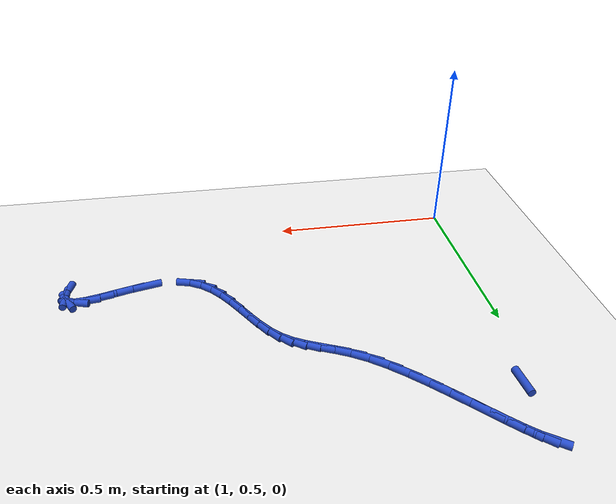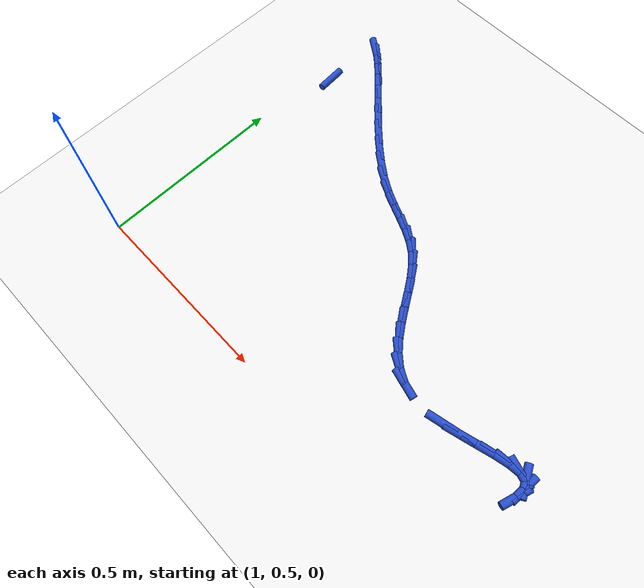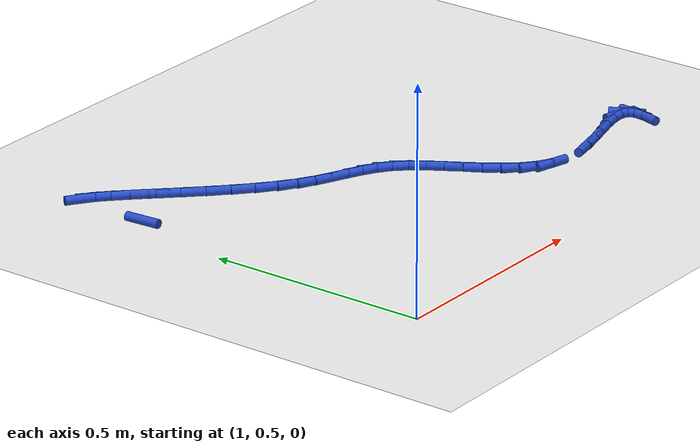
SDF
<sdf version="1.6">
 <world name="default">
  <model name="ground_plane">
   <static>1</static>
   <link name="link">
    <collision name="collision">
     <geometry><plane><normal>0 0 1</normal><size>100 100</size></plane></geometry>
     <surface><friction><ode><mu>100</mu><mu2>50</mu2></ode></friction></surface>
    </collision>
    <visual name="visual">
     <cast_shadows>0</cast_shadows>
     <geometry><plane><normal>0 0 1</normal><size>100 100</size></plane></geometry>
     <material>
      <script><uri>file://media/materials/scripts/gazebo.material</uri><name>Gazebo/WhiteGlow</name></script>
     </material>
    </visual>
   </link>
  </model>
  <model name="line">
   <link name="link_47">
    <pose>1.0438481756337614 1.232311479643305 0.01 0 1.57 -1.502000540450538</pose>
    <collision name="collision">
     <geometry><cylinder><radius>0.01</radius><length>0.08</length></cylinder></geometry>
    </collision>
    <visual name="visual">
     <material>
      <script><name>Gazebo/Blue</name><uri>file://media/materials/scripts/gazebo.material</uri></script>
     </material>
     <geometry><cylinder><radius>0.01</radius><length>0.08</length></cylinder></geometry>
    </visual>
   </link>
   <link name="link_54">
    <pose>1.0576668361381854 1.4027648305423797 0.01 0 1.57 -0.613841902767912</pose>
    <collision name="collision">
     <geometry><cylinder><radius>0.01</radius><length>0.08</length></cylinder></geometry>
    </collision>
    <visual name="visual">
     <material>
      <script><name>Gazebo/Blue</name><uri>file://media/materials/scripts/gazebo.material</uri></script>
     </material>
     <geometry><cylinder><radius>0.01</radius><length>0.08</length></cylinder></geometry>
    </visual>
   </link>
   <link name="link_55">
    <pose>1.0777483266673082 1.3886143497642618 0.01 0 1.57 -0.728491891102244</pose>
    <collision name="collision">
     <geometry><cylinder><radius>0.01</radius><length>0.08</length></cylinder></geometry>
    </collision>
    <visual name="visual">
     <material>
      <script><name>Gazebo/Blue</name><uri>file://media/materials/scripts/gazebo.material</uri></script>
     </material>
     <geometry><cylinder><radius>0.01</radius><length>0.08</length></cylinder></geometry>
    </visual>
   </link>
   <link name="link_56">
    <pose>1.1022071522153511 1.366792056748008 0.01 0 1.57 -0.7803951883285504</pose>
    <collision name="collision">
     <geometry><cylinder><radius>0.01</radius><length>0.08</length></cylinder></geometry>
    </collision>
    <visual name="visual">
     <material>
      <script><name>Gazebo/Blue</name><uri>file://media/materials/scripts/gazebo.material</uri></script>
     </material>
     <geometry><cylinder><radius>0.01</radius><length>0.08</length></cylinder></geometry>
    </visual>
   </link>
   <link name="link_57">
    <pose>1.1304509060775019 1.338829503982765 0.01 0 1.57 -0.8031283511208743</pose>
    <collision name="collision">
     <geometry><cylinder><radius>0.01</radius><length>0.08</length></cylinder></geometry>
    </collision>
    <visual name="visual">
     <material>
      <script><name>Gazebo/Blue</name><uri>file://media/materials/scripts/gazebo.material</uri></script>
     </material>
     <geometry><cylinder><radius>0.01</radius><length>0.08</length></cylinder></geometry>
    </visual>
   </link>
   <link name="link_58">
    <pose>1.1618871815489493 1.306258243957677 0.01 0 1.57 -0.8085271217908689</pose>
    <collision name="collision">
     <geometry><cylinder><radius>0.01</radius><length>0.08</length></cylinder></geometry>
    </collision>
    <visual name="visual">
     <material>
      <script><name>Gazebo/Blue</name><uri>file://media/materials/scripts/gazebo.material</uri></script>
     </material>
     <geometry><cylinder><radius>0.01</radius><length>0.08</length></cylinder></geometry>
    </visual>
   </link>
   <link name="link_59">
    <pose>1.1959235719248824 1.2706098291618904 0.01 0 1.57 -0.801097966855747</pose>
    <collision name="collision">
     <geometry><cylinder><radius>0.01</radius><length>0.08</length></cylinder></geometry>
    </collision>
    <visual name="visual">
     <material>
      <script><name>Gazebo/Blue</name><uri>file://media/materials/scripts/gazebo.material</uri></script>
     </material>
     <geometry><cylinder><radius>0.01</radius><length>0.08</length></cylinder></geometry>
    </visual>
   </link>
   <link name="link_60">
    <pose>1.2319676705004912 1.23341581208455 0.01 0 1.57 -0.782032142534381</pose>
    <collision name="collision">
     <geometry><cylinder><radius>0.01</radius><length>0.08</length></cylinder></geometry>
    </collision>
    <visual name="visual">
     <material>
      <script><name>Gazebo/Blue</name><uri>file://media/materials/scripts/gazebo.material</uri></script>
     </material>
     <geometry><cylinder><radius>0.01</radius><length>0.08</length></cylinder></geometry>
    </visual>
   </link>
   <link name="link_61">
    <pose>1.2694270705709623 1.1962077452148026 0.01 0 1.57 -0.750376251048214</pose>
    <collision name="collision">
     <geometry><cylinder><radius>0.01</radius><length>0.08</length></cylinder></geometry>
    </collision>
    <visual name="visual">
     <material>
      <script><name>Gazebo/Blue</name><uri>file://media/materials/scripts/gazebo.material</uri></script>
     </material>
     <geometry><cylinder><radius>0.01</radius><length>0.08</length></cylinder></geometry>
    </visual>
   </link>
   <link name="link_62">
    <pose>1.3077093654314864 1.1605171810417936 0.01 0 1.57 -0.7030699892687395</pose>
    <collision name="collision">
     <geometry><cylinder><radius>0.01</radius><length>0.08</length></cylinder></geometry>
    </collision>
    <visual name="visual">
     <material>
      <script><name>Gazebo/Blue</name><uri>file://media/materials/scripts/gazebo.material</uri></script>
     </material>
     <geometry><cylinder><radius>0.01</radius><length>0.08</length></cylinder></geometry>
    </visual>
   </link>
   <link name="link_63">
    <pose>1.346222148377252 1.1278756720546679 0.01 0 1.57 -0.6341723387397363</pose>
    <collision name="collision">
     <geometry><cylinder><radius>0.01</radius><length>0.08</length></cylinder></geometry>
    </collision>
    <visual name="visual">
     <material>
      <script><name>Gazebo/Blue</name><uri>file://media/materials/scripts/gazebo.material</uri></script>
     </material>
     <geometry><cylinder><radius>0.01</radius><length>0.08</length></cylinder></geometry>
    </visual>
   </link>
   <link name="link_64">
    <pose>1.3843730127034477 1.0998147707425723 0.01 0 1.57 -0.5386966603337799</pose>
    <collision name="collision">
     <geometry><cylinder><radius>0.01</radius><length>0.08</length></cylinder></geometry>
    </collision>
    <visual name="visual">
     <material>
      <script><name>Gazebo/Blue</name><uri>file://media/materials/scripts/gazebo.material</uri></script>
     </material>
     <geometry><cylinder><radius>0.01</radius><length>0.08</length></cylinder></geometry>
    </visual>
   </link>
   <link name="link_65">
    <pose>1.421590855276233 1.0775711789595939 0.01 0 1.57 -0.45377471875242775</pose>
    <collision name="collision">
     <geometry><cylinder><radius>0.01</radius><length>0.08</length></cylinder></geometry>
    </collision>
    <visual name="visual">
     <material>
      <script><name>Gazebo/Blue</name><uri>file://media/materials/scripts/gazebo.material</uri></script>
     </material>
     <geometry><cylinder><radius>0.01</radius><length>0.08</length></cylinder></geometry>
    </visual>
   </link>
   <link name="link_66">
    <pose>1.4574714815310066 1.060071511781243 0.01 0 1.57 -0.4111279789276704</pose>
    <collision name="collision">
     <geometry><cylinder><radius>0.01</radius><length>0.08</length></cylinder></geometry>
    </collision>
    <visual name="visual">
     <material>
      <script><name>Gazebo/Blue</name><uri>file://media/materials/scripts/gazebo.material</uri></script>
     </material>
     <geometry><cylinder><radius>0.01</radius><length>0.08</length></cylinder></geometry>
    </visual>
   </link>
   <link name="link_67">
    <pose>1.4916893756426919 1.045153436503021 0.01 0 1.57 -0.42289680968629967</pose>
    <collision name="collision">
     <geometry><cylinder><radius>0.01</radius><length>0.08</length></cylinder></geometry>
    </collision>
    <visual name="visual">
     <material>
      <script><name>Gazebo/Blue</name><uri>file://media/materials/scripts/gazebo.material</uri></script>
     </material>
     <geometry><cylinder><radius>0.01</radius><length>0.08</length></cylinder></geometry>
    </visual>
   </link>
   <link name="link_68">
    <pose>1.523919483813063 1.0306482257690492 0.01 0 1.57 -0.4978659021485133</pose>
    <collision name="collision">
     <geometry><cylinder><radius>0.01</radius><length>0.08</length></cylinder></geometry>
    </collision>
    <visual name="visual">
     <material>
      <script><name>Gazebo/Blue</name><uri>file://media/materials/scripts/gazebo.material</uri></script>
     </material>
     <geometry><cylinder><radius>0.01</radius><length>0.08</length></cylinder></geometry>
    </visual>
   </link>
   <link name="link_69">
    <pose>1.5538367522438925 1.014387152223447 0.01 0 1.57 -0.6370447020658595</pose>
    <collision name="collision">
     <geometry><cylinder><radius>0.01</radius><length>0.08</length></cylinder></geometry>
    </collision>
    <visual name="visual">
     <material>
      <script><name>Gazebo/Blue</name><uri>file://media/materials/scripts/gazebo.material</uri></script>
     </material>
     <geometry><cylinder><radius>0.01</radius><length>0.08</length></cylinder></geometry>
    </visual>
   </link>
   <link name="link_70">
    <pose>1.581116129215657 0.9942014951621901 0.01 0 1.57 -0.8071825467529306</pose>
    <collision name="collision">
     <geometry><cylinder><radius>0.01</radius><length>0.08</length></cylinder></geometry>
    </collision>
    <visual name="visual">
     <material>
      <script><name>Gazebo/Blue</name><uri>file://media/materials/scripts/gazebo.material</uri></script>
     </material>
     <geometry><cylinder><radius>0.01</radius><length>0.08</length></cylinder></geometry>
    </visual>
   </link>
   <link name="link_71">
    <pose>1.6056397282249038 0.9685854623789829 0.01 0 1.57 -0.9300030060966878</pose>
    <collision name="collision">
     <geometry><cylinder><radius>0.01</radius><length>0.08</length></cylinder></geometry>
    </collision>
    <visual name="visual">
     <material>
      <script><name>Gazebo/Blue</name><uri>file://media/materials/scripts/gazebo.material</uri></script>
     </material>
     <geometry><cylinder><radius>0.01</radius><length>0.08</length></cylinder></geometry>
    </visual>
   </link>
   <link name="link_72">
    <pose>1.6280653245290417 0.9385153785771043 0.01 0 1.57 -1.000021395005159</pose>
    <collision name="collision">
     <geometry><cylinder><radius>0.01</radius><length>0.08</length></cylinder></geometry>
    </collision>
    <visual name="visual">
     <material>
      <script><name>Gazebo/Blue</name><uri>file://media/materials/scripts/gazebo.material</uri></script>
     </material>
     <geometry><cylinder><radius>0.01</radius><length>0.08</length></cylinder></geometry>
    </visual>
   </link>
   <link name="link_73">
    <pose>1.6492321963015202 0.9055483776214603 0.01 0 1.57 -1.026883010544404</pose>
    <collision name="collision">
     <geometry><cylinder><radius>0.01</radius><length>0.08</length></cylinder></geometry>
    </collision>
    <visual name="visual">
     <material>
      <script><name>Gazebo/Blue</name><uri>file://media/materials/scripts/gazebo.material</uri></script>
     </material>
     <geometry><cylinder><radius>0.01</radius><length>0.08</length></cylinder></geometry>
    </visual>
   </link>
   <link name="link_74">
    <pose>1.6699796217157856 0.8712415933769566 0.01 0 1.57 -1.0151268811893586</pose>
    <collision name="collision">
     <geometry><cylinder><radius>0.01</radius><length>0.08</length></cylinder></geometry>
    </collision>
    <visual name="visual">
     <material>
      <script><name>Gazebo/Blue</name><uri>file://media/materials/scripts/gazebo.material</uri></script>
     </material>
     <geometry><cylinder><radius>0.01</radius><length>0.08</length></cylinder></geometry>
    </visual>
   </link>
   <link name="link_75">
    <pose>1.691146878945286 0.8371521597084984 0.01 0 1.57 -0.9641129038287042</pose>
    <collision name="collision">
     <geometry><cylinder><radius>0.01</radius><length>0.08</length></cylinder></geometry>
    </collision>
    <visual name="visual">
     <material>
      <script><name>Gazebo/Blue</name><uri>file://media/materials/scripts/gazebo.material</uri></script>
     </material>
     <geometry><cylinder><radius>0.01</radius><length>0.08</length></cylinder></geometry>
    </visual>
   </link>
   <link name="link_76">
    <pose>1.7135732461634703 0.8048372104809913 0.01 0 1.57 -0.8685313839008822</pose>
    <collision name="collision">
     <geometry><cylinder><radius>0.01</radius><length>0.08</length></cylinder></geometry>
    </collision>
    <visual name="visual">
     <material>
      <script><name>Gazebo/Blue</name><uri>file://media/materials/scripts/gazebo.material</uri></script>
     </material>
     <geometry><cylinder><radius>0.01</radius><length>0.08</length></cylinder></geometry>
    </visual>
   </link>
   <link name="link_77">
    <pose>1.7380980015437844 0.775853879559341 0.01 0 1.57 -0.7201681286227198</pose>
    <collision name="collision">
     <geometry><cylinder><radius>0.01</radius><length>0.08</length></cylinder></geometry>
    </collision>
    <visual name="visual">
     <material>
      <script><name>Gazebo/Blue</name><uri>file://media/materials/scripts/gazebo.material</uri></script>
     </material>
     <geometry><cylinder><radius>0.01</radius><length>0.08</length></cylinder></geometry>
    </visual>
   </link>
   <link name="link_78">
    <pose>1.7655604232596773 0.751759300808453 0.01 0 1.57 -0.5142489492076203</pose>
    <collision name="collision">
     <geometry><cylinder><radius>0.01</radius><length>0.08</length></cylinder></geometry>
    </collision>
    <visual name="visual">
     <material>
      <script><name>Gazebo/Blue</name><uri>file://media/materials/scripts/gazebo.material</uri></script>
     </material>
     <geometry><cylinder><radius>0.01</radius><length>0.08</length></cylinder></geometry>
    </visual>
   </link>
   <link name="link_79">
    <pose>1.7967997894845977 0.7341106080932328 0.01 0 1.57 -0.26281188434732417</pose>
    <collision name="collision">
     <geometry><cylinder><radius>0.01</radius><length>0.08</length></cylinder></geometry>
    </collision>
    <visual name="visual">
     <material>
      <script><name>Gazebo/Blue</name><uri>file://media/materials/scripts/gazebo.material</uri></script>
     </material>
     <geometry><cylinder><radius>0.01</radius><length>0.08</length></cylinder></geometry>
    </visual>
   </link>
   <link name="link_82">
    <pose>1.9171042262596691 0.7292373899931744 0.01 0 1.57 0.2193369366691486</pose>
    <collision name="collision">
     <geometry><cylinder><radius>0.01</radius><length>0.08</length></cylinder></geometry>
    </collision>
    <visual name="visual">
     <material>
      <script><name>Gazebo/Blue</name><uri>file://media/materials/scripts/gazebo.material</uri></script>
     </material>
     <geometry><cylinder><radius>0.01</radius><length>0.08</length></cylinder></geometry>
    </visual>
   </link>
   <link name="link_83">
    <pose>1.961917367703103 0.7392272835639213 0.01 0 1.57 0.26277826136028576</pose>
    <collision name="collision">
     <geometry><cylinder><radius>0.01</radius><length>0.08</length></cylinder></geometry>
    </collision>
    <visual name="visual">
     <material>
      <script><name>Gazebo/Blue</name><uri>file://media/materials/scripts/gazebo.material</uri></script>
     </material>
     <geometry><cylinder><radius>0.01</radius><length>0.08</length></cylinder></geometry>
    </visual>
   </link>
   <link name="link_84">
    <pose>2.005697345725211 0.7510040373029271 0.01 0 1.57 0.2664387800928989</pose>
    <collision name="collision">
     <geometry><cylinder><radius>0.01</radius><length>0.08</length></cylinder></geometry>
    </collision>
    <visual name="visual">
     <material>
      <script><name>Gazebo/Blue</name><uri>file://media/materials/scripts/gazebo.material</uri></script>
     </material>
     <geometry><cylinder><radius>0.01</radius><length>0.08</length></cylinder></geometry>
    </visual>
   </link>
   <link name="link_85">
    <pose>2.0463750386495496 0.7621061147303156 0.01 0 1.57 0.2206964636185534</pose>
    <collision name="collision">
     <geometry><cylinder><radius>0.01</radius><length>0.08</length></cylinder></geometry>
    </collision>
    <visual name="visual">
     <material>
      <script><name>Gazebo/Blue</name><uri>file://media/materials/scripts/gazebo.material</uri></script>
     </material>
     <geometry><cylinder><radius>0.01</radius><length>0.08</length></cylinder></geometry>
    </visual>
   </link>
   <link name="link_86">
    <pose>2.0818813247996704 0.77007197936621 0.01 0 1.57 0.08358515946901968</pose>
    <collision name="collision">
     <geometry><cylinder><radius>0.01</radius><length>0.08</length></cylinder></geometry>
    </collision>
    <visual name="visual">
     <material>
      <script><name>Gazebo/Blue</name><uri>file://media/materials/scripts/gazebo.material</uri></script>
     </material>
     <geometry><cylinder><radius>0.01</radius><length>0.08</length></cylinder></geometry>
    </visual>
   </link>
   <link name="link_87">
    <pose>2.1101470824991297 0.772440094730734 0.01 0 1.57 -0.29166673585404285</pose>
    <collision name="collision">
     <geometry><cylinder><radius>0.01</radius><length>0.08</length></cylinder></geometry>
    </collision>
    <visual name="visual">
     <material>
      <script><name>Gazebo/Blue</name><uri>file://media/materials/scripts/gazebo.material</uri></script>
     </material>
     <geometry><cylinder><radius>0.01</radius><length>0.08</length></cylinder></geometry>
    </visual>
   </link>
   <link name="link_88">
    <pose>2.129103190071482 0.7667489243440111 0.01 0 1.57 -1.1016557000606213</pose>
    <collision name="collision">
     <geometry><cylinder><radius>0.01</radius><length>0.08</length></cylinder></geometry>
    </collision>
    <visual name="visual">
     <material>
      <script><name>Gazebo/Blue</name><uri>file://media/materials/scripts/gazebo.material</uri></script>
     </material>
     <geometry><cylinder><radius>0.01</radius><length>0.08</length></cylinder></geometry>
    </visual>
   </link>
   <link name="link_89">
    <pose>2.13710007454467 0.7509724060009757 0.01 0 1.57 1.4932194195515063</pose>
    <collision name="collision">
     <geometry><cylinder><radius>0.01</radius><length>0.08</length></cylinder></geometry>
    </collision>
    <visual name="visual">
     <material>
      <script><name>Gazebo/Blue</name><uri>file://media/materials/scripts/gazebo.material</uri></script>
     </material>
     <geometry><cylinder><radius>0.01</radius><length>0.08</length></cylinder></geometry>
    </visual>
   </link>
   <link name="link_90">
    <pose>2.1351467707306804 0.7258440028738392 0.01 0 1.57 1.2777819757225566</pose>
    <collision name="collision">
     <geometry><cylinder><radius>0.01</radius><length>0.08</length></cylinder></geometry>
    </collision>
    <visual name="visual">
     <material>
      <script><name>Gazebo/Blue</name><uri>file://media/materials/scripts/gazebo.material</uri></script>
     </material>
     <geometry><cylinder><radius>0.01</radius><length>0.08</length></cylinder></geometry>
    </visual>
   </link>
  </model>
 </world>
</sdf>
